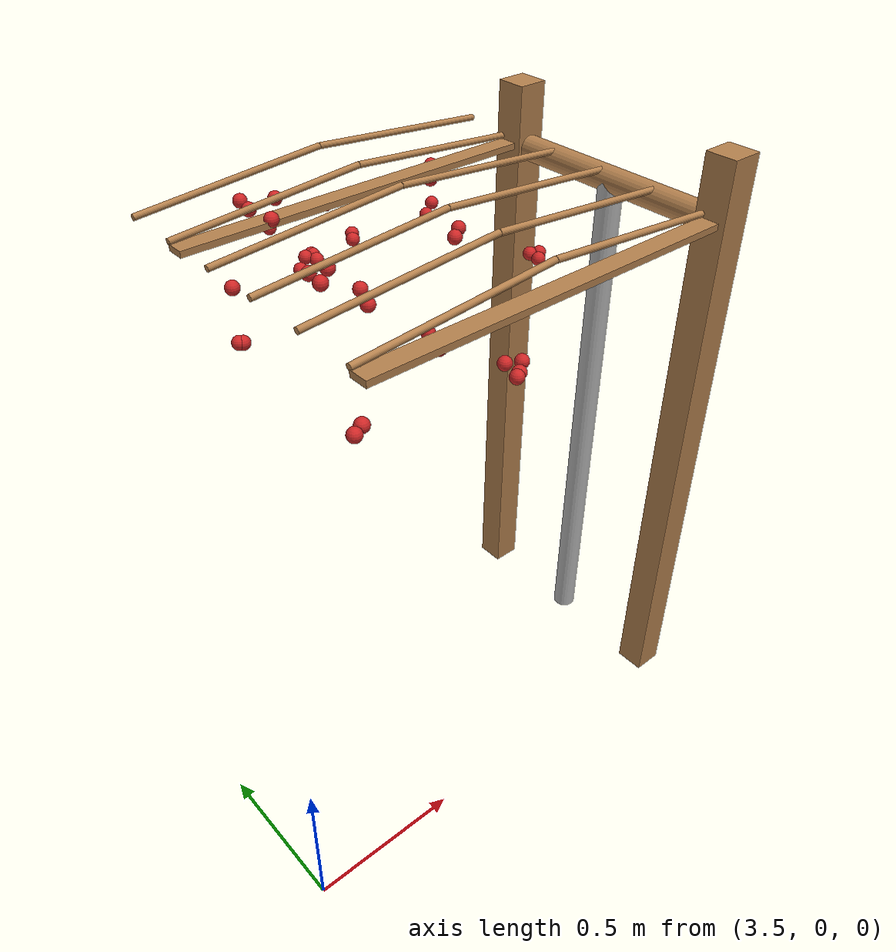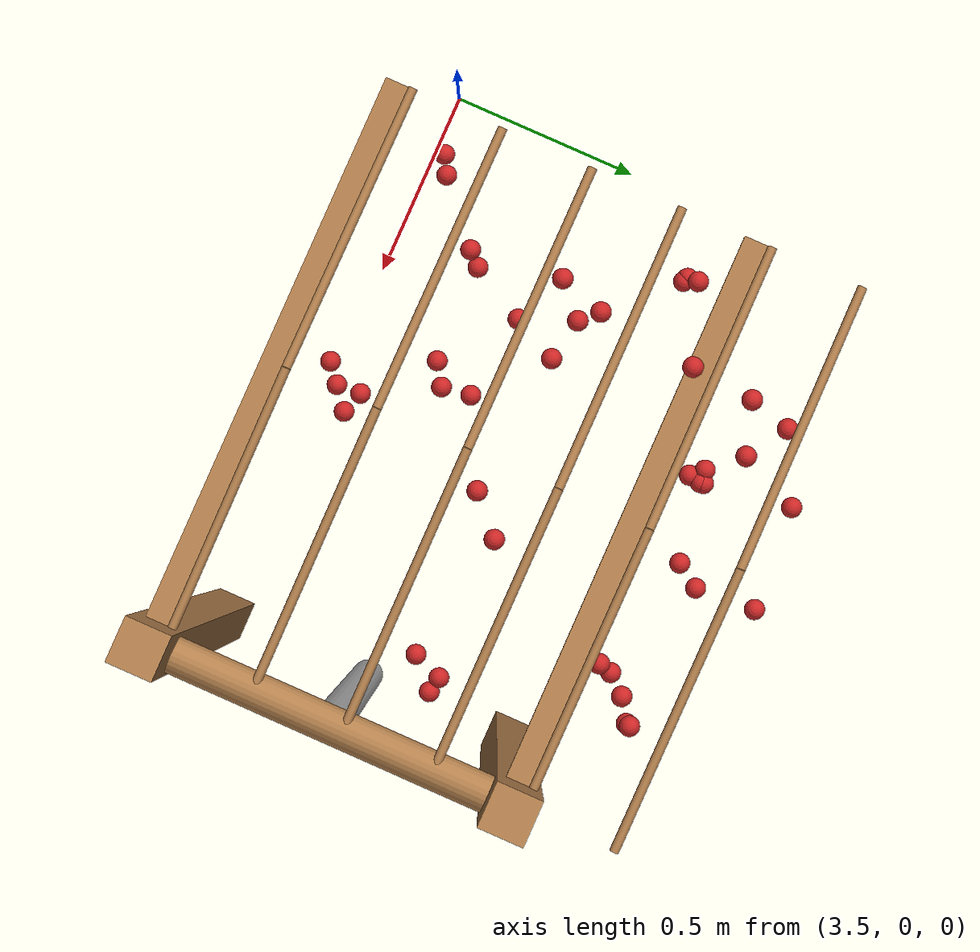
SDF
<sdf version="1.4">
 <model name="pergola">
  <include><name>post_28</name><pose>5.0 0.0 0 0 0 0</pose><uri>model://post</uri></include>
  <include><name>post_29</name><pose>5.0 0.8 0 0 0 0</pose><uri>model://post</uri></include>
  <link name="beam_21">
   <pose>4.375 0.0 1.81 0 0 0</pose>
   <collision name="collision"><geometry><box><size>1.25 0.06 0.02</size></box></geometry></collision>
   <visual name="visual">
    <geometry><box><size>1.25 0.06 0.02</size></box></geometry>
    <material><script><name>Gazebo/Wood</name></script></material>
   </visual>
   <inertial>
    <mass>5</mass>
    <inertia>
     <ixx>0.0016666666666666668</ixx>
     <ixy>0.0</ixy>
     <ixz>0.0</ixz>
     <iyy>0.6525416666666667</iyy>
     <iyz>0.0</iyz>
     <izz>0.6512083333333333</izz>
    </inertia>
   </inertial>
  </link>
  <link name="beam_22">
   <pose>4.375 0.8 1.81 0 0 0</pose>
   <collision name="collision"><geometry><box><size>1.25 0.06 0.02</size></box></geometry></collision>
   <visual name="visual">
    <geometry><box><size>1.25 0.06 0.02</size></box></geometry>
    <material><script><name>Gazebo/Wood</name></script></material>
   </visual>
   <inertial>
    <mass>5</mass>
    <inertia>
     <ixx>0.0016666666666666668</ixx>
     <ixy>0.0</ixy>
     <ixz>0.0</ixz>
     <iyy>0.6525416666666667</iyy>
     <iyz>0.0</iyz>
     <izz>0.6512083333333333</izz>
    </inertia>
   </inertial>
  </link>
  <include><name>tree_24</name><pose>5.0 0.4 0 0 0 0</pose><uri>model://tree_trunk</uri></include>
  <link name="baseBranch_24">
   <pose>5.0 0.4 1.8 1.5707963267948966 0 0</pose>
   <collision name="collision">
    <geometry><cylinder><radius>0.04</radius><length>0.74</length></cylinder></geometry>
   </collision>
   <visual name="visual">
    <geometry><cylinder><radius>0.04</radius><length>0.74</length></cylinder></geometry>
    <material><script><name>Gazebo/WoodFloor</name></script></material>
   </visual>
   <inertial>
    <mass>10</mass>
    <inertia>
     <ixx>0.4603333333333333</ixx>
     <ixy>0.0</ixy>
     <ixz>0.0</ixz>
     <iyy>0.4603333333333333</iyy>
     <iyz>0.0</iyz>
     <izz>0.008</izz>
    </inertia>
   </inertial>
  </link>
  <link name="vine_144">
   <pose>4.0625 0.03 1.85 0 1.4909663410826592 0</pose>
   <collision name="collision">
    <geometry><cylinder><radius>0.01</radius><length>0.6269968101992226</length></cylinder></geometry>
   </collision>
   <visual name="visual">
    <geometry><cylinder><radius>0.01</radius><length>0.6269968101992226</length></cylinder></geometry>
    <material><script><name>Gazebo/WoodFloor</name></script></material>
   </visual>
   <inertial>
    <mass>5</mass>
    <inertia>
     <ixx>0.1639270833333333</ixx>
     <ixy>0.0</ixy>
     <ixz>0.0</ixz>
     <iyy>0.1639270833333333</iyy>
     <iyz>0.0</iyz>
     <izz>0.00025</izz>
    </inertia>
   </inertial>
  </link>
  <link name="vine_145">
   <pose>4.6875 0.03 1.85 0 -1.4909663410826592 0</pose>
   <collision name="collision">
    <geometry><cylinder><radius>0.01</radius><length>0.6269968101992226</length></cylinder></geometry>
   </collision>
   <visual name="visual">
    <geometry><cylinder><radius>0.01</radius><length>0.6269968101992226</length></cylinder></geometry>
    <material><script><name>Gazebo/WoodFloor</name></script></material>
   </visual>
   <inertial>
    <mass>5</mass>
    <inertia>
     <ixx>0.1639270833333333</ixx>
     <ixy>0.0</ixy>
     <ixz>0.0</ixz>
     <iyy>0.1639270833333333</iyy>
     <iyz>0.0</iyz>
     <izz>0.00025</izz>
    </inertia>
   </inertial>
  </link>
  <link name="vine_146">
   <pose>4.0625 0.23 1.85 0 1.4909663410826592 0</pose>
   <collision name="collision">
    <geometry><cylinder><radius>0.01</radius><length>0.6269968101992226</length></cylinder></geometry>
   </collision>
   <visual name="visual">
    <geometry><cylinder><radius>0.01</radius><length>0.6269968101992226</length></cylinder></geometry>
    <material><script><name>Gazebo/WoodFloor</name></script></material>
   </visual>
   <inertial>
    <mass>5</mass>
    <inertia>
     <ixx>0.1639270833333333</ixx>
     <ixy>0.0</ixy>
     <ixz>0.0</ixz>
     <iyy>0.1639270833333333</iyy>
     <iyz>0.0</iyz>
     <izz>0.00025</izz>
    </inertia>
   </inertial>
  </link>
  <link name="vine_147">
   <pose>4.6875 0.23 1.85 0 -1.4909663410826592 0</pose>
   <collision name="collision">
    <geometry><cylinder><radius>0.01</radius><length>0.6269968101992226</length></cylinder></geometry>
   </collision>
   <visual name="visual">
    <geometry><cylinder><radius>0.01</radius><length>0.6269968101992226</length></cylinder></geometry>
    <material><script><name>Gazebo/WoodFloor</name></script></material>
   </visual>
   <inertial>
    <mass>5</mass>
    <inertia>
     <ixx>0.1639270833333333</ixx>
     <ixy>0.0</ixy>
     <ixz>0.0</ixz>
     <iyy>0.1639270833333333</iyy>
     <iyz>0.0</iyz>
     <izz>0.00025</izz>
    </inertia>
   </inertial>
  </link>
  <link name="vine_148">
   <pose>4.0625 0.43000000000000005 1.85 0 1.4909663410826592 0</pose>
   <collision name="collision">
    <geometry><cylinder><radius>0.01</radius><length>0.6269968101992226</length></cylinder></geometry>
   </collision>
   <visual name="visual">
    <geometry><cylinder><radius>0.01</radius><length>0.6269968101992226</length></cylinder></geometry>
    <material><script><name>Gazebo/WoodFloor</name></script></material>
   </visual>
   <inertial>
    <mass>5</mass>
    <inertia>
     <ixx>0.1639270833333333</ixx>
     <ixy>0.0</ixy>
     <ixz>0.0</ixz>
     <iyy>0.1639270833333333</iyy>
     <iyz>0.0</iyz>
     <izz>0.00025</izz>
    </inertia>
   </inertial>
  </link>
  <link name="vine_149">
   <pose>4.6875 0.43000000000000005 1.85 0 -1.4909663410826592 0</pose>
   <collision name="collision">
    <geometry><cylinder><radius>0.01</radius><length>0.6269968101992226</length></cylinder></geometry>
   </collision>
   <visual name="visual">
    <geometry><cylinder><radius>0.01</radius><length>0.6269968101992226</length></cylinder></geometry>
    <material><script><name>Gazebo/WoodFloor</name></script></material>
   </visual>
   <inertial>
    <mass>5</mass>
    <inertia>
     <ixx>0.1639270833333333</ixx>
     <ixy>0.0</ixy>
     <ixz>0.0</ixz>
     <iyy>0.1639270833333333</iyy>
     <iyz>0.0</iyz>
     <izz>0.00025</izz>
    </inertia>
   </inertial>
  </link>
  <link name="vine_150">
   <pose>4.0625 0.6300000000000001 1.85 0 1.4909663410826592 0</pose>
   <collision name="collision">
    <geometry><cylinder><radius>0.01</radius><length>0.6269968101992226</length></cylinder></geometry>
   </collision>
   <visual name="visual">
    <geometry><cylinder><radius>0.01</radius><length>0.6269968101992226</length></cylinder></geometry>
    <material><script><name>Gazebo/WoodFloor</name></script></material>
   </visual>
   <inertial>
    <mass>5</mass>
    <inertia>
     <ixx>0.1639270833333333</ixx>
     <ixy>0.0</ixy>
     <ixz>0.0</ixz>
     <iyy>0.1639270833333333</iyy>
     <iyz>0.0</iyz>
     <izz>0.00025</izz>
    </inertia>
   </inertial>
  </link>
  <link name="vine_151">
   <pose>4.6875 0.6300000000000001 1.85 0 -1.4909663410826592 0</pose>
   <collision name="collision">
    <geometry><cylinder><radius>0.01</radius><length>0.6269968101992226</length></cylinder></geometry>
   </collision>
   <visual name="visual">
    <geometry><cylinder><radius>0.01</radius><length>0.6269968101992226</length></cylinder></geometry>
    <material><script><name>Gazebo/WoodFloor</name></script></material>
   </visual>
   <inertial>
    <mass>5</mass>
    <inertia>
     <ixx>0.1639270833333333</ixx>
     <ixy>0.0</ixy>
     <ixz>0.0</ixz>
     <iyy>0.1639270833333333</iyy>
     <iyz>0.0</iyz>
     <izz>0.00025</izz>
    </inertia>
   </inertial>
  </link>
  <link name="vine_152">
   <pose>4.0625 0.8300000000000001 1.85 0 1.4909663410826592 0</pose>
   <collision name="collision">
    <geometry><cylinder><radius>0.01</radius><length>0.6269968101992226</length></cylinder></geometry>
   </collision>
   <visual name="visual">
    <geometry><cylinder><radius>0.01</radius><length>0.6269968101992226</length></cylinder></geometry>
    <material><script><name>Gazebo/WoodFloor</name></script></material>
   </visual>
   <inertial>
    <mass>5</mass>
    <inertia>
     <ixx>0.1639270833333333</ixx>
     <ixy>0.0</ixy>
     <ixz>0.0</ixz>
     <iyy>0.1639270833333333</iyy>
     <iyz>0.0</iyz>
     <izz>0.00025</izz>
    </inertia>
   </inertial>
  </link>
  <link name="vine_153">
   <pose>4.6875 0.8300000000000001 1.85 0 -1.4909663410826592 0</pose>
   <collision name="collision">
    <geometry><cylinder><radius>0.01</radius><length>0.6269968101992226</length></cylinder></geometry>
   </collision>
   <visual name="visual">
    <geometry><cylinder><radius>0.01</radius><length>0.6269968101992226</length></cylinder></geometry>
    <material><script><name>Gazebo/WoodFloor</name></script></material>
   </visual>
   <inertial>
    <mass>5</mass>
    <inertia>
     <ixx>0.1639270833333333</ixx>
     <ixy>0.0</ixy>
     <ixz>0.0</ixz>
     <iyy>0.1639270833333333</iyy>
     <iyz>0.0</iyz>
     <izz>0.00025</izz>
    </inertia>
   </inertial>
  </link>
  <link name="vine_154">
   <pose>4.0625 1.03 1.85 0 1.4909663410826592 0</pose>
   <collision name="collision">
    <geometry><cylinder><radius>0.01</radius><length>0.6269968101992226</length></cylinder></geometry>
   </collision>
   <visual name="visual">
    <geometry><cylinder><radius>0.01</radius><length>0.6269968101992226</length></cylinder></geometry>
    <material><script><name>Gazebo/WoodFloor</name></script></material>
   </visual>
   <inertial>
    <mass>5</mass>
    <inertia>
     <ixx>0.1639270833333333</ixx>
     <ixy>0.0</ixy>
     <ixz>0.0</ixz>
     <iyy>0.1639270833333333</iyy>
     <iyz>0.0</iyz>
     <izz>0.00025</izz>
    </inertia>
   </inertial>
  </link>
  <link name="vine_155">
   <pose>4.6875 1.03 1.85 0 -1.4909663410826592 0</pose>
   <collision name="collision">
    <geometry><cylinder><radius>0.01</radius><length>0.6269968101992226</length></cylinder></geometry>
   </collision>
   <visual name="visual">
    <geometry><cylinder><radius>0.01</radius><length>0.6269968101992226</length></cylinder></geometry>
    <material><script><name>Gazebo/WoodFloor</name></script></material>
   </visual>
   <inertial>
    <mass>5</mass>
    <inertia>
     <ixx>0.1639270833333333</ixx>
     <ixy>0.0</ixy>
     <ixz>0.0</ixz>
     <iyy>0.1639270833333333</iyy>
     <iyz>0.0</iyz>
     <izz>0.00025</izz>
    </inertia>
   </inertial>
  </link>
  <link name="fruit_18">
   <pose>4.667189210639569 0.8538998489556379 1.748661454350269 0 0 0</pose>
   <collision name="fruit_collision_18"><geometry><sphere><radius>0.022</radius></sphere></geometry></collision>
   <visual name="visual">
    <geometry><sphere><radius>0.022</radius></sphere></geometry>
    <material><script><name>Gazebo/Red</name></script></material>
   </visual>
   <inertial>
    <mass>0.05</mass>
    <inertia>
     <ixx>9.679999999999999e-06</ixx>
     <ixy>0.0</ixy>
     <ixz>0.0</ixz>
     <iyy>9.679999999999999e-06</iyy>
     <iyz>0.0</iyz>
     <izz>9.679999999999999e-06</izz>
    </inertia>
   </inertial>
   <sensor name="fruit_contact_18" type="contact">
    <plugin name="contact_plugin_18" filename="libcontact_plugin.so"/>
    <contact><collision>fruit_collision_18</collision><topic>fruit_contact_topic_18</topic></contact>
   </sensor>
  </link>
  <link name="fruit_42">
   <pose>4.226459715677886 0.2905293908676281 1.563544557676115 0 0 0</pose>
   <collision name="fruit_collision_42"><geometry><sphere><radius>0.022</radius></sphere></geometry></collision>
   <visual name="visual">
    <geometry><sphere><radius>0.022</radius></sphere></geometry>
    <material><script><name>Gazebo/Red</name></script></material>
   </visual>
   <inertial>
    <mass>0.05</mass>
    <inertia>
     <ixx>9.679999999999999e-06</ixx>
     <ixy>0.0</ixy>
     <ixz>0.0</ixz>
     <iyy>9.679999999999999e-06</iyy>
     <iyz>0.0</iyz>
     <izz>9.679999999999999e-06</izz>
    </inertia>
   </inertial>
   <sensor name="fruit_contact_42" type="contact">
    <plugin name="contact_plugin_42" filename="libcontact_plugin.so"/>
    <contact><collision>fruit_collision_42</collision><topic>fruit_contact_topic_42</topic></contact>
   </sensor>
  </link>
  <link name="fruit_76">
   <pose>4.140757992870823 0.8220945579926987 1.619900106047646 0 0 0</pose>
   <collision name="fruit_collision_76"><geometry><sphere><radius>0.022</radius></sphere></geometry></collision>
   <visual name="visual">
    <geometry><sphere><radius>0.022</radius></sphere></geometry>
    <material><script><name>Gazebo/Red</name></script></material>
   </visual>
   <inertial>
    <mass>0.05</mass>
    <inertia>
     <ixx>9.679999999999999e-06</ixx>
     <ixy>0.0</ixy>
     <ixz>0.0</ixz>
     <iyy>9.679999999999999e-06</iyy>
     <iyz>0.0</iyz>
     <izz>9.679999999999999e-06</izz>
    </inertia>
   </inertial>
   <sensor name="fruit_contact_76" type="contact">
    <plugin name="contact_plugin_76" filename="libcontact_plugin.so"/>
    <contact><collision>fruit_collision_76</collision><topic>fruit_contact_topic_76</topic></contact>
   </sensor>
  </link>
  <link name="fruit_80">
   <pose>4.444956800743004 0.48115998849434344 1.7523385409979857 0 0 0</pose>
   <collision name="fruit_collision_80"><geometry><sphere><radius>0.022</radius></sphere></geometry></collision>
   <visual name="visual">
    <geometry><sphere><radius>0.022</radius></sphere></geometry>
    <material><script><name>Gazebo/Red</name></script></material>
   </visual>
   <inertial>
    <mass>0.05</mass>
    <inertia>
     <ixx>9.679999999999999e-06</ixx>
     <ixy>0.0</ixy>
     <ixz>0.0</ixz>
     <iyy>9.679999999999999e-06</iyy>
     <iyz>0.0</iyz>
     <izz>9.679999999999999e-06</izz>
    </inertia>
   </inertial>
   <sensor name="fruit_contact_80" type="contact">
    <plugin name="contact_plugin_80" filename="libcontact_plugin.so"/>
    <contact><collision>fruit_collision_80</collision><topic>fruit_contact_topic_80</topic></contact>
   </sensor>
  </link>
  <link name="fruit_123">
   <pose>4.048595186243792 0.9191204382139264 1.801015191693801 0 0 0</pose>
   <collision name="fruit_collision_123"><geometry><sphere><radius>0.022</radius></sphere></geometry></collision>
   <visual name="visual">
    <geometry><sphere><radius>0.022</radius></sphere></geometry>
    <material><script><name>Gazebo/Red</name></script></material>
   </visual>
   <inertial>
    <mass>0.05</mass>
    <inertia>
     <ixx>9.679999999999999e-06</ixx>
     <ixy>0.0</ixy>
     <ixz>0.0</ixz>
     <iyy>9.679999999999999e-06</iyy>
     <iyz>0.0</iyz>
     <izz>9.679999999999999e-06</izz>
    </inertia>
   </inertial>
   <sensor name="fruit_contact_123" type="contact">
    <plugin name="contact_plugin_123" filename="libcontact_plugin.so"/>
    <contact><collision>fruit_collision_123</collision><topic>fruit_contact_topic_123</topic></contact>
   </sensor>
  </link>
  <link name="fruit_127">
   <pose>3.9763432703957355 0.4653865501017034 1.77402594114814 0 0 0</pose>
   <collision name="fruit_collision_127"><geometry><sphere><radius>0.022</radius></sphere></geometry></collision>
   <visual name="visual">
    <geometry><sphere><radius>0.022</radius></sphere></geometry>
    <material><script><name>Gazebo/Red</name></script></material>
   </visual>
   <inertial>
    <mass>0.05</mass>
    <inertia>
     <ixx>9.679999999999999e-06</ixx>
     <ixy>0.0</ixy>
     <ixz>0.0</ixz>
     <iyy>9.679999999999999e-06</iyy>
     <iyz>0.0</iyz>
     <izz>9.679999999999999e-06</izz>
    </inertia>
   </inertial>
   <sensor name="fruit_contact_127" type="contact">
    <plugin name="contact_plugin_127" filename="libcontact_plugin.so"/>
    <contact><collision>fruit_collision_127</collision><topic>fruit_contact_topic_127</topic></contact>
   </sensor>
  </link>
  <link name="fruit_151">
   <pose>4.812618315981477 0.5014917228800112 1.5619583952954132 0 0 0</pose>
   <collision name="fruit_collision_151"><geometry><sphere><radius>0.022</radius></sphere></geometry></collision>
   <visual name="visual">
    <geometry><sphere><radius>0.022</radius></sphere></geometry>
    <material><script><name>Gazebo/Red</name></script></material>
   </visual>
   <inertial>
    <mass>0.05</mass>
    <inertia>
     <ixx>9.679999999999999e-06</ixx>
     <ixy>0.0</ixy>
     <ixz>0.0</ixz>
     <iyy>9.679999999999999e-06</iyy>
     <iyz>0.0</iyz>
     <izz>9.679999999999999e-06</izz>
    </inertia>
   </inertial>
   <sensor name="fruit_contact_151" type="contact">
    <plugin name="contact_plugin_151" filename="libcontact_plugin.so"/>
    <contact><collision>fruit_collision_151</collision><topic>fruit_contact_topic_151</topic></contact>
   </sensor>
  </link>
  <link name="fruit_169">
   <pose>4.209630517839888 1.0961470930236088 1.6355973905837942 0 0 0</pose>
   <collision name="fruit_collision_169"><geometry><sphere><radius>0.022</radius></sphere></geometry></collision>
   <visual name="visual">
    <geometry><sphere><radius>0.022</radius></sphere></geometry>
    <material><script><name>Gazebo/Red</name></script></material>
   </visual>
   <inertial>
    <mass>0.05</mass>
    <inertia>
     <ixx>9.679999999999999e-06</ixx>
     <ixy>0.0</ixy>
     <ixz>0.0</ixz>
     <iyy>9.679999999999999e-06</iyy>
     <iyz>0.0</iyz>
     <izz>9.679999999999999e-06</izz>
    </inertia>
   </inertial>
   <sensor name="fruit_contact_169" type="contact">
    <plugin name="contact_plugin_169" filename="libcontact_plugin.so"/>
    <contact><collision>fruit_collision_169</collision><topic>fruit_contact_topic_169</topic></contact>
   </sensor>
  </link>
  <link name="fruit_184">
   <pose>4.318353800391757 0.0821271835626442 1.5368305348818636 0 0 0</pose>
   <collision name="fruit_collision_184"><geometry><sphere><radius>0.022</radius></sphere></geometry></collision>
   <visual name="visual">
    <geometry><sphere><radius>0.022</radius></sphere></geometry>
    <material><script><name>Gazebo/Red</name></script></material>
   </visual>
   <inertial>
    <mass>0.05</mass>
    <inertia>
     <ixx>9.679999999999999e-06</ixx>
     <ixy>0.0</ixy>
     <ixz>0.0</ixz>
     <iyy>9.679999999999999e-06</iyy>
     <iyz>0.0</iyz>
     <izz>9.679999999999999e-06</izz>
    </inertia>
   </inertial>
   <sensor name="fruit_contact_184" type="contact">
    <plugin name="contact_plugin_184" filename="libcontact_plugin.so"/>
    <contact><collision>fruit_collision_184</collision><topic>fruit_contact_topic_184</topic></contact>
   </sensor>
  </link>
  <link name="fruit_187">
   <pose>3.98500730453018 0.26108455173850564 1.6013202643405904 0 0 0</pose>
   <collision name="fruit_collision_187"><geometry><sphere><radius>0.022</radius></sphere></geometry></collision>
   <visual name="visual">
    <geometry><sphere><radius>0.022</radius></sphere></geometry>
    <material><script><name>Gazebo/Red</name></script></material>
   </visual>
   <inertial>
    <mass>0.05</mass>
    <inertia>
     <ixx>9.679999999999999e-06</ixx>
     <ixy>0.0</ixy>
     <ixz>0.0</ixz>
     <iyy>9.679999999999999e-06</iyy>
     <iyz>0.0</iyz>
     <izz>9.679999999999999e-06</izz>
    </inertia>
   </inertial>
   <sensor name="fruit_contact_187" type="contact">
    <plugin name="contact_plugin_187" filename="libcontact_plugin.so"/>
    <contact><collision>fruit_collision_187</collision><topic>fruit_contact_topic_187</topic></contact>
   </sensor>
  </link>
  <link name="fruit_199">
   <pose>4.436161909248295 1.1099065740961842 1.6460461167189273 0 0 0</pose>
   <collision name="fruit_collision_199"><geometry><sphere><radius>0.022</radius></sphere></geometry></collision>
   <visual name="visual">
    <geometry><sphere><radius>0.022</radius></sphere></geometry>
    <material><script><name>Gazebo/Red</name></script></material>
   </visual>
   <inertial>
    <mass>0.05</mass>
    <inertia>
     <ixx>9.679999999999999e-06</ixx>
     <ixy>0.0</ixy>
     <ixz>0.0</ixz>
     <iyy>9.679999999999999e-06</iyy>
     <iyz>0.0</iyz>
     <izz>9.679999999999999e-06</izz>
    </inertia>
   </inertial>
   <sensor name="fruit_contact_199" type="contact">
    <plugin name="contact_plugin_199" filename="libcontact_plugin.so"/>
    <contact><collision>fruit_collision_199</collision><topic>fruit_contact_topic_199</topic></contact>
   </sensor>
  </link>
  <link name="fruit_284">
   <pose>4.410345343656173 0.9317547678642205 1.595464745860772 0 0 0</pose>
   <collision name="fruit_collision_284"><geometry><sphere><radius>0.022</radius></sphere></geometry></collision>
   <visual name="visual">
    <geometry><sphere><radius>0.022</radius></sphere></geometry>
    <material><script><name>Gazebo/Red</name></script></material>
   </visual>
   <inertial>
    <mass>0.05</mass>
    <inertia>
     <ixx>9.679999999999999e-06</ixx>
     <ixy>0.0</ixy>
     <ixz>0.0</ixz>
     <iyy>9.679999999999999e-06</iyy>
     <iyz>0.0</iyz>
     <izz>9.679999999999999e-06</izz>
    </inertia>
   </inertial>
   <sensor name="fruit_contact_284" type="contact">
    <plugin name="contact_plugin_284" filename="libcontact_plugin.so"/>
    <contact><collision>fruit_collision_284</collision><topic>fruit_contact_topic_284</topic></contact>
   </sensor>
  </link>
  <link name="fruit_305">
   <pose>4.037568491229922 0.7807577567470301 1.8211263430610214 0 0 0</pose>
   <collision name="fruit_collision_305"><geometry><sphere><radius>0.022</radius></sphere></geometry></collision>
   <visual name="visual">
    <geometry><sphere><radius>0.022</radius></sphere></geometry>
    <material><script><name>Gazebo/Red</name></script></material>
   </visual>
   <inertial>
    <mass>0.05</mass>
    <inertia>
     <ixx>9.679999999999999e-06</ixx>
     <ixy>0.0</ixy>
     <ixz>0.0</ixz>
     <iyy>9.679999999999999e-06</iyy>
     <iyz>0.0</iyz>
     <izz>9.679999999999999e-06</izz>
    </inertia>
   </inertial>
   <sensor name="fruit_contact_305" type="contact">
    <plugin name="contact_plugin_305" filename="libcontact_plugin.so"/>
    <contact><collision>fruit_collision_305</collision><topic>fruit_contact_topic_305</topic></contact>
   </sensor>
  </link>
  <link name="fruit_318">
   <pose>4.084359986095676 0.41399726368634676 1.6954278982475255 0 0 0</pose>
   <collision name="fruit_collision_318"><geometry><sphere><radius>0.022</radius></sphere></geometry></collision>
   <visual name="visual">
    <geometry><sphere><radius>0.022</radius></sphere></geometry>
    <material><script><name>Gazebo/Red</name></script></material>
   </visual>
   <inertial>
    <mass>0.05</mass>
    <inertia>
     <ixx>9.679999999999999e-06</ixx>
     <ixy>0.0</ixy>
     <ixz>0.0</ixz>
     <iyy>9.679999999999999e-06</iyy>
     <iyz>0.0</iyz>
     <izz>9.679999999999999e-06</izz>
    </inertia>
   </inertial>
   <sensor name="fruit_contact_318" type="contact">
    <plugin name="contact_plugin_318" filename="libcontact_plugin.so"/>
    <contact><collision>fruit_collision_318</collision><topic>fruit_contact_topic_318</topic></contact>
   </sensor>
  </link>
  <link name="fruit_325">
   <pose>4.678873894854878 0.8901862957821712 1.617038282481688 0 0 0</pose>
   <collision name="fruit_collision_325"><geometry><sphere><radius>0.022</radius></sphere></geometry></collision>
   <visual name="visual">
    <geometry><sphere><radius>0.022</radius></sphere></geometry>
    <material><script><name>Gazebo/Red</name></script></material>
   </visual>
   <inertial>
    <mass>0.05</mass>
    <inertia>
     <ixx>9.679999999999999e-06</ixx>
     <ixy>0.0</ixy>
     <ixz>0.0</ixz>
     <iyy>9.679999999999999e-06</iyy>
     <iyz>0.0</iyz>
     <izz>9.679999999999999e-06</izz>
    </inertia>
   </inertial>
   <sensor name="fruit_contact_325" type="contact">
    <plugin name="contact_plugin_325" filename="libcontact_plugin.so"/>
    <contact><collision>fruit_collision_325</collision><topic>fruit_contact_topic_325</topic></contact>
   </sensor>
  </link>
  <link name="fruit_352">
   <pose>4.158376353535429 0.9546186403354956 1.7932355231193913 0 0 0</pose>
   <collision name="fruit_collision_352"><geometry><sphere><radius>0.022</radius></sphere></geometry></collision>
   <visual name="visual">
    <geometry><sphere><radius>0.022</radius></sphere></geometry>
    <material><script><name>Gazebo/Red</name></script></material>
   </visual>
   <inertial>
    <mass>0.05</mass>
    <inertia>
     <ixx>9.679999999999999e-06</ixx>
     <ixy>0.0</ixy>
     <ixz>0.0</ixz>
     <iyy>9.679999999999999e-06</iyy>
     <iyz>0.0</iyz>
     <izz>9.679999999999999e-06</izz>
    </inertia>
   </inertial>
   <sensor name="fruit_contact_352" type="contact">
    <plugin name="contact_plugin_352" filename="libcontact_plugin.so"/>
    <contact><collision>fruit_collision_352</collision><topic>fruit_contact_topic_352</topic></contact>
   </sensor>
  </link>
  <link name="fruit_361">
   <pose>4.522154972964918 0.5536751806865672 1.7319585001642992 0 0 0</pose>
   <collision name="fruit_collision_361"><geometry><sphere><radius>0.022</radius></sphere></geometry></collision>
   <visual name="visual">
    <geometry><sphere><radius>0.022</radius></sphere></geometry>
    <material><script><name>Gazebo/Red</name></script></material>
   </visual>
   <inertial>
    <mass>0.05</mass>
    <inertia>
     <ixx>9.679999999999999e-06</ixx>
     <ixy>0.0</ixy>
     <ixz>0.0</ixz>
     <iyy>9.679999999999999e-06</iyy>
     <iyz>0.0</iyz>
     <izz>9.679999999999999e-06</izz>
    </inertia>
   </inertial>
   <sensor name="fruit_contact_361" type="contact">
    <plugin name="contact_plugin_361" filename="libcontact_plugin.so"/>
    <contact><collision>fruit_collision_361</collision><topic>fruit_contact_topic_361</topic></contact>
   </sensor>
  </link>
  <link name="fruit_389">
   <pose>3.8478479520382485 0.7056377282746029 1.5381406121292411 0 0 0</pose>
   <collision name="fruit_collision_389"><geometry><sphere><radius>0.022</radius></sphere></geometry></collision>
   <visual name="visual">
    <geometry><sphere><radius>0.022</radius></sphere></geometry>
    <material><script><name>Gazebo/Red</name></script></material>
   </visual>
   <inertial>
    <mass>0.05</mass>
    <inertia>
     <ixx>9.679999999999999e-06</ixx>
     <ixy>0.0</ixy>
     <ixz>0.0</ixz>
     <iyy>9.679999999999999e-06</iyy>
     <iyz>0.0</iyz>
     <izz>9.679999999999999e-06</izz>
    </inertia>
   </inertial>
   <sensor name="fruit_contact_389" type="contact">
    <plugin name="contact_plugin_389" filename="libcontact_plugin.so"/>
    <contact><collision>fruit_collision_389</collision><topic>fruit_contact_topic_389</topic></contact>
   </sensor>
  </link>
  <link name="fruit_393">
   <pose>3.8581290860007447 0.7006697273293531 1.5372596225252864 0 0 0</pose>
   <collision name="fruit_collision_393"><geometry><sphere><radius>0.022</radius></sphere></geometry></collision>
   <visual name="visual">
    <geometry><sphere><radius>0.022</radius></sphere></geometry>
    <material><script><name>Gazebo/Red</name></script></material>
   </visual>
   <inertial>
    <mass>0.05</mass>
    <inertia>
     <ixx>9.679999999999999e-06</ixx>
     <ixy>0.0</ixy>
     <ixz>0.0</ixz>
     <iyy>9.679999999999999e-06</iyy>
     <iyz>0.0</iyz>
     <izz>9.679999999999999e-06</izz>
    </inertia>
   </inertial>
   <sensor name="fruit_contact_393" type="contact">
    <plugin name="contact_plugin_393" filename="libcontact_plugin.so"/>
    <contact><collision>fruit_collision_393</collision><topic>fruit_contact_topic_393</topic></contact>
   </sensor>
  </link>
  <link name="fruit_408">
   <pose>4.273141449024914 0.3208201063542052 1.5504176444943778 0 0 0</pose>
   <collision name="fruit_collision_408"><geometry><sphere><radius>0.022</radius></sphere></geometry></collision>
   <visual name="visual">
    <geometry><sphere><radius>0.022</radius></sphere></geometry>
    <material><script><name>Gazebo/Red</name></script></material>
   </visual>
   <inertial>
    <mass>0.05</mass>
    <inertia>
     <ixx>9.679999999999999e-06</ixx>
     <ixy>0.0</ixy>
     <ixz>0.0</ixz>
     <iyy>9.679999999999999e-06</iyy>
     <iyz>0.0</iyz>
     <izz>9.679999999999999e-06</izz>
    </inertia>
   </inertial>
   <sensor name="fruit_contact_408" type="contact">
    <plugin name="contact_plugin_408" filename="libcontact_plugin.so"/>
    <contact><collision>fruit_collision_408</collision><topic>fruit_contact_topic_408</topic></contact>
   </sensor>
  </link>
  <link name="fruit_409">
   <pose>4.011779462661835 0.2898576086601458 1.5882065211836152 0 0 0</pose>
   <collision name="fruit_collision_409"><geometry><sphere><radius>0.022</radius></sphere></geometry></collision>
   <visual name="visual">
    <geometry><sphere><radius>0.022</radius></sphere></geometry>
    <material><script><name>Gazebo/Red</name></script></material>
   </visual>
   <inertial>
    <mass>0.05</mass>
    <inertia>
     <ixx>9.679999999999999e-06</ixx>
     <ixy>0.0</ixy>
     <ixz>0.0</ixz>
     <iyy>9.679999999999999e-06</iyy>
     <iyz>0.0</iyz>
     <izz>9.679999999999999e-06</izz>
    </inertia>
   </inertial>
   <sensor name="fruit_contact_409" type="contact">
    <plugin name="contact_plugin_409" filename="libcontact_plugin.so"/>
    <contact><collision>fruit_collision_409</collision><topic>fruit_contact_topic_409</topic></contact>
   </sensor>
  </link>
  <link name="fruit_419">
   <pose>4.710462440324327 0.9235278665373452 1.73622696055132 0 0 0</pose>
   <collision name="fruit_collision_419"><geometry><sphere><radius>0.022</radius></sphere></geometry></collision>
   <visual name="visual">
    <geometry><sphere><radius>0.022</radius></sphere></geometry>
    <material><script><name>Gazebo/Red</name></script></material>
   </visual>
   <inertial>
    <mass>0.05</mass>
    <inertia>
     <ixx>9.679999999999999e-06</ixx>
     <ixy>0.0</ixy>
     <ixz>0.0</ixz>
     <iyy>9.679999999999999e-06</iyy>
     <iyz>0.0</iyz>
     <izz>9.679999999999999e-06</izz>
    </inertia>
   </inertial>
   <sensor name="fruit_contact_419" type="contact">
    <plugin name="contact_plugin_419" filename="libcontact_plugin.so"/>
    <contact><collision>fruit_collision_419</collision><topic>fruit_contact_topic_419</topic></contact>
   </sensor>
  </link>
  <link name="fruit_441">
   <pose>3.8184058476733242 0.12656233524108387 1.5593468347817045 0 0 0</pose>
   <collision name="fruit_collision_441"><geometry><sphere><radius>0.022</radius></sphere></geometry></collision>
   <visual name="visual">
    <geometry><sphere><radius>0.022</radius></sphere></geometry>
    <material><script><name>Gazebo/Red</name></script></material>
   </visual>
   <inertial>
    <mass>0.05</mass>
    <inertia>
     <ixx>9.679999999999999e-06</ixx>
     <ixy>0.0</ixy>
     <ixz>0.0</ixz>
     <iyy>9.679999999999999e-06</iyy>
     <iyz>0.0</iyz>
     <izz>9.679999999999999e-06</izz>
    </inertia>
   </inertial>
   <sensor name="fruit_contact_441" type="contact">
    <plugin name="contact_plugin_441" filename="libcontact_plugin.so"/>
    <contact><collision>fruit_collision_441</collision><topic>fruit_contact_topic_441</topic></contact>
   </sensor>
  </link>
  <link name="fruit_442">
   <pose>4.874586642646392 0.5593971766772609 1.5430723205838932 0 0 0</pose>
   <collision name="fruit_collision_442"><geometry><sphere><radius>0.022</radius></sphere></geometry></collision>
   <visual name="visual">
    <geometry><sphere><radius>0.022</radius></sphere></geometry>
    <material><script><name>Gazebo/Red</name></script></material>
   </visual>
   <inertial>
    <mass>0.05</mass>
    <inertia>
     <ixx>9.679999999999999e-06</ixx>
     <ixy>0.0</ixy>
     <ixz>0.0</ixz>
     <iyy>9.679999999999999e-06</iyy>
     <iyz>0.0</iyz>
     <izz>9.679999999999999e-06</izz>
    </inertia>
   </inertial>
   <sensor name="fruit_contact_442" type="contact">
    <plugin name="contact_plugin_442" filename="libcontact_plugin.so"/>
    <contact><collision>fruit_collision_442</collision><topic>fruit_contact_topic_442</topic></contact>
   </sensor>
  </link>
  <link name="fruit_457">
   <pose>4.072874582670981 1.00969270292253 1.7905526375039569 0 0 0</pose>
   <collision name="fruit_collision_457"><geometry><sphere><radius>0.022</radius></sphere></geometry></collision>
   <visual name="visual">
    <geometry><sphere><radius>0.022</radius></sphere></geometry>
    <material><script><name>Gazebo/Red</name></script></material>
   </visual>
   <inertial>
    <mass>0.05</mass>
    <inertia>
     <ixx>9.679999999999999e-06</ixx>
     <ixy>0.0</ixy>
     <ixz>0.0</ixz>
     <iyy>9.679999999999999e-06</iyy>
     <iyz>0.0</iyz>
     <izz>9.679999999999999e-06</izz>
    </inertia>
   </inertial>
   <sensor name="fruit_contact_457" type="contact">
    <plugin name="contact_plugin_457" filename="libcontact_plugin.so"/>
    <contact><collision>fruit_collision_457</collision><topic>fruit_contact_topic_457</topic></contact>
   </sensor>
  </link>
  <link name="fruit_476">
   <pose>4.042701334221307 0.5285814565865811 1.7700675208136598 0 0 0</pose>
   <collision name="fruit_collision_476"><geometry><sphere><radius>0.022</radius></sphere></geometry></collision>
   <visual name="visual">
    <geometry><sphere><radius>0.022</radius></sphere></geometry>
    <material><script><name>Gazebo/Red</name></script></material>
   </visual>
   <inertial>
    <mass>0.05</mass>
    <inertia>
     <ixx>9.679999999999999e-06</ixx>
     <ixy>0.0</ixy>
     <ixz>0.0</ixz>
     <iyy>9.679999999999999e-06</iyy>
     <iyz>0.0</iyz>
     <izz>9.679999999999999e-06</izz>
    </inertia>
   </inertial>
   <sensor name="fruit_contact_476" type="contact">
    <plugin name="contact_plugin_476" filename="libcontact_plugin.so"/>
    <contact><collision>fruit_collision_476</collision><topic>fruit_contact_topic_476</topic></contact>
   </sensor>
  </link>
  <link name="fruit_482">
   <pose>4.005848975021356 0.5647978098159254 1.7529779699386954 0 0 0</pose>
   <collision name="fruit_collision_482"><geometry><sphere><radius>0.022</radius></sphere></geometry></collision>
   <visual name="visual">
    <geometry><sphere><radius>0.022</radius></sphere></geometry>
    <material><script><name>Gazebo/Red</name></script></material>
   </visual>
   <inertial>
    <mass>0.05</mass>
    <inertia>
     <ixx>9.679999999999999e-06</ixx>
     <ixy>0.0</ixy>
     <ixz>0.0</ixz>
     <iyy>9.679999999999999e-06</iyy>
     <iyz>0.0</iyz>
     <izz>9.679999999999999e-06</izz>
    </inertia>
   </inertial>
   <sensor name="fruit_contact_482" type="contact">
    <plugin name="contact_plugin_482" filename="libcontact_plugin.so"/>
    <contact><collision>fruit_collision_482</collision><topic>fruit_contact_topic_482</topic></contact>
   </sensor>
  </link>
  <link name="fruit_506">
   <pose>3.8614215080800927 0.7246072958161087 1.6955146064728002 0 0 0</pose>
   <collision name="fruit_collision_506"><geometry><sphere><radius>0.022</radius></sphere></geometry></collision>
   <visual name="visual">
    <geometry><sphere><radius>0.022</radius></sphere></geometry>
    <material><script><name>Gazebo/Red</name></script></material>
   </visual>
   <inertial>
    <mass>0.05</mass>
    <inertia>
     <ixx>9.679999999999999e-06</ixx>
     <ixy>0.0</ixy>
     <ixz>0.0</ixz>
     <iyy>9.679999999999999e-06</iyy>
     <iyz>0.0</iyz>
     <izz>9.679999999999999e-06</izz>
    </inertia>
   </inertial>
   <sensor name="fruit_contact_506" type="contact">
    <plugin name="contact_plugin_506" filename="libcontact_plugin.so"/>
    <contact><collision>fruit_collision_506</collision><topic>fruit_contact_topic_506</topic></contact>
   </sensor>
  </link>
  <link name="fruit_520">
   <pose>4.444943860886834 0.9838891651442447 1.587309209970014 0 0 0</pose>
   <collision name="fruit_collision_520"><geometry><sphere><radius>0.022</radius></sphere></geometry></collision>
   <visual name="visual">
    <geometry><sphere><radius>0.022</radius></sphere></geometry>
    <material><script><name>Gazebo/Red</name></script></material>
   </visual>
   <inertial>
    <mass>0.05</mass>
    <inertia>
     <ixx>9.679999999999999e-06</ixx>
     <ixy>0.0</ixy>
     <ixz>0.0</ixz>
     <iyy>9.679999999999999e-06</iyy>
     <iyz>0.0</iyz>
     <izz>9.679999999999999e-06</izz>
    </inertia>
   </inertial>
   <sensor name="fruit_contact_520" type="contact">
    <plugin name="contact_plugin_520" filename="libcontact_plugin.so"/>
    <contact><collision>fruit_collision_520</collision><topic>fruit_contact_topic_520</topic></contact>
   </sensor>
  </link>
  <link name="fruit_535">
   <pose>4.238082004054206 0.9018146683288569 1.6078978171907827 0 0 0</pose>
   <collision name="fruit_collision_535"><geometry><sphere><radius>0.022</radius></sphere></geometry></collision>
   <visual name="visual">
    <geometry><sphere><radius>0.022</radius></sphere></geometry>
    <material><script><name>Gazebo/Red</name></script></material>
   </visual>
   <inertial>
    <mass>0.05</mass>
    <inertia>
     <ixx>9.679999999999999e-06</ixx>
     <ixy>0.0</ixy>
     <ixz>0.0</ixz>
     <iyy>9.679999999999999e-06</iyy>
     <iyz>0.0</iyz>
     <izz>9.679999999999999e-06</izz>
    </inertia>
   </inertial>
   <sensor name="fruit_contact_535" type="contact">
    <plugin name="contact_plugin_535" filename="libcontact_plugin.so"/>
    <contact><collision>fruit_collision_535</collision><topic>fruit_contact_topic_535</topic></contact>
   </sensor>
  </link>
  <link name="fruit_592">
   <pose>4.264117639441689 0.3850281788277066 1.5576126831177997 0 0 0</pose>
   <collision name="fruit_collision_592"><geometry><sphere><radius>0.022</radius></sphere></geometry></collision>
   <visual name="visual">
    <geometry><sphere><radius>0.022</radius></sphere></geometry>
    <material><script><name>Gazebo/Red</name></script></material>
   </visual>
   <inertial>
    <mass>0.05</mass>
    <inertia>
     <ixx>9.679999999999999e-06</ixx>
     <ixy>0.0</ixy>
     <ixz>0.0</ixz>
     <iyy>9.679999999999999e-06</iyy>
     <iyz>0.0</iyz>
     <izz>9.679999999999999e-06</izz>
    </inertia>
   </inertial>
   <sensor name="fruit_contact_592" type="contact">
    <plugin name="contact_plugin_592" filename="libcontact_plugin.so"/>
    <contact><collision>fruit_collision_592</collision><topic>fruit_contact_topic_592</topic></contact>
   </sensor>
  </link>
  <link name="fruit_594">
   <pose>4.2101251518545295 0.9004262517206401 1.609283156855059 0 0 0</pose>
   <collision name="fruit_collision_594"><geometry><sphere><radius>0.022</radius></sphere></geometry></collision>
   <visual name="visual">
    <geometry><sphere><radius>0.022</radius></sphere></geometry>
    <material><script><name>Gazebo/Red</name></script></material>
   </visual>
   <inertial>
    <mass>0.05</mass>
    <inertia>
     <ixx>9.679999999999999e-06</ixx>
     <ixy>0.0</ixy>
     <ixz>0.0</ixz>
     <iyy>9.679999999999999e-06</iyy>
     <iyz>0.0</iyz>
     <izz>9.679999999999999e-06</izz>
    </inertia>
   </inertial>
   <sensor name="fruit_contact_594" type="contact">
    <plugin name="contact_plugin_594" filename="libcontact_plugin.so"/>
    <contact><collision>fruit_collision_594</collision><topic>fruit_contact_topic_594</topic></contact>
   </sensor>
  </link>
  <link name="fruit_641">
   <pose>4.763429401512863 0.9638080504156761 1.609456135982109 0 0 0</pose>
   <collision name="fruit_collision_641"><geometry><sphere><radius>0.022</radius></sphere></geometry></collision>
   <visual name="visual">
    <geometry><sphere><radius>0.022</radius></sphere></geometry>
    <material><script><name>Gazebo/Red</name></script></material>
   </visual>
   <inertial>
    <mass>0.05</mass>
    <inertia>
     <ixx>9.679999999999999e-06</ixx>
     <ixy>0.0</ixy>
     <ixz>0.0</ixz>
     <iyy>9.679999999999999e-06</iyy>
     <iyz>0.0</iyz>
     <izz>9.679999999999999e-06</izz>
    </inertia>
   </inertial>
   <sensor name="fruit_contact_641" type="contact">
    <plugin name="contact_plugin_641" filename="libcontact_plugin.so"/>
    <contact><collision>fruit_collision_641</collision><topic>fruit_contact_topic_641</topic></contact>
   </sensor>
  </link>
  <link name="fruit_650">
   <pose>4.40424442065365 0.1506970906203438 1.5178565607681838 0 0 0</pose>
   <collision name="fruit_collision_650"><geometry><sphere><radius>0.022</radius></sphere></geometry></collision>
   <visual name="visual">
    <geometry><sphere><radius>0.022</radius></sphere></geometry>
    <material><script><name>Gazebo/Red</name></script></material>
   </visual>
   <inertial>
    <mass>0.05</mass>
    <inertia>
     <ixx>9.679999999999999e-06</ixx>
     <ixy>0.0</ixy>
     <ixz>0.0</ixz>
     <iyy>9.679999999999999e-06</iyy>
     <iyz>0.0</iyz>
     <izz>9.679999999999999e-06</izz>
    </inertia>
   </inertial>
   <sensor name="fruit_contact_650" type="contact">
    <plugin name="contact_plugin_650" filename="libcontact_plugin.so"/>
    <contact><collision>fruit_collision_650</collision><topic>fruit_contact_topic_650</topic></contact>
   </sensor>
  </link>
  <link name="fruit_653">
   <pose>4.358115206240416 0.11342121103281419 1.518870482691158 0 0 0</pose>
   <collision name="fruit_collision_653"><geometry><sphere><radius>0.022</radius></sphere></geometry></collision>
   <visual name="visual">
    <geometry><sphere><radius>0.022</radius></sphere></geometry>
    <material><script><name>Gazebo/Red</name></script></material>
   </visual>
   <inertial>
    <mass>0.05</mass>
    <inertia>
     <ixx>9.679999999999999e-06</ixx>
     <ixy>0.0</ixy>
     <ixz>0.0</ixz>
     <iyy>9.679999999999999e-06</iyy>
     <iyz>0.0</iyz>
     <izz>9.679999999999999e-06</izz>
    </inertia>
   </inertial>
   <sensor name="fruit_contact_653" type="contact">
    <plugin name="contact_plugin_653" filename="libcontact_plugin.so"/>
    <contact><collision>fruit_collision_653</collision><topic>fruit_contact_topic_653</topic></contact>
   </sensor>
  </link>
  <link name="fruit_658">
   <pose>4.759617040845474 0.9623438583163496 1.7410539293638094 0 0 0</pose>
   <collision name="fruit_collision_658"><geometry><sphere><radius>0.022</radius></sphere></geometry></collision>
   <visual name="visual">
    <geometry><sphere><radius>0.022</radius></sphere></geometry>
    <material><script><name>Gazebo/Red</name></script></material>
   </visual>
   <inertial>
    <mass>0.05</mass>
    <inertia>
     <ixx>9.679999999999999e-06</ixx>
     <ixy>0.0</ixy>
     <ixz>0.0</ixz>
     <iyy>9.679999999999999e-06</iyy>
     <iyz>0.0</iyz>
     <izz>9.679999999999999e-06</izz>
    </inertia>
   </inertial>
   <sensor name="fruit_contact_658" type="contact">
    <plugin name="contact_plugin_658" filename="libcontact_plugin.so"/>
    <contact><collision>fruit_collision_658</collision><topic>fruit_contact_topic_658</topic></contact>
   </sensor>
  </link>
  <link name="fruit_664">
   <pose>4.838752809205884 0.5659333475179702 1.548143887759783 0 0 0</pose>
   <collision name="fruit_collision_664"><geometry><sphere><radius>0.022</radius></sphere></geometry></collision>
   <visual name="visual">
    <geometry><sphere><radius>0.022</radius></sphere></geometry>
    <material><script><name>Gazebo/Red</name></script></material>
   </visual>
   <inertial>
    <mass>0.05</mass>
    <inertia>
     <ixx>9.679999999999999e-06</ixx>
     <ixy>0.0</ixy>
     <ixz>0.0</ixz>
     <iyy>9.679999999999999e-06</iyy>
     <iyz>0.0</iyz>
     <izz>9.679999999999999e-06</izz>
    </inertia>
   </inertial>
   <sensor name="fruit_contact_664" type="contact">
    <plugin name="contact_plugin_664" filename="libcontact_plugin.so"/>
    <contact><collision>fruit_collision_664</collision><topic>fruit_contact_topic_664</topic></contact>
   </sensor>
  </link>
  <link name="fruit_710">
   <pose>4.237460914713289 0.9088646607205786 1.6078855587017928 0 0 0</pose>
   <collision name="fruit_collision_710"><geometry><sphere><radius>0.022</radius></sphere></geometry></collision>
   <visual name="visual">
    <geometry><sphere><radius>0.022</radius></sphere></geometry>
    <material><script><name>Gazebo/Red</name></script></material>
   </visual>
   <inertial>
    <mass>0.05</mass>
    <inertia>
     <ixx>9.679999999999999e-06</ixx>
     <ixy>0.0</ixy>
     <ixz>0.0</ixz>
     <iyy>9.679999999999999e-06</iyy>
     <iyz>0.0</iyz>
     <izz>9.679999999999999e-06</izz>
    </inertia>
   </inertial>
   <sensor name="fruit_contact_710" type="contact">
    <plugin name="contact_plugin_710" filename="libcontact_plugin.so"/>
    <contact><collision>fruit_collision_710</collision><topic>fruit_contact_topic_710</topic></contact>
   </sensor>
  </link>
  <link name="fruit_714">
   <pose>4.354921246640745 0.1675159230441333 1.5230367183477407 0 0 0</pose>
   <collision name="fruit_collision_714"><geometry><sphere><radius>0.022</radius></sphere></geometry></collision>
   <visual name="visual">
    <geometry><sphere><radius>0.022</radius></sphere></geometry>
    <material><script><name>Gazebo/Red</name></script></material>
   </visual>
   <inertial>
    <mass>0.05</mass>
    <inertia>
     <ixx>9.679999999999999e-06</ixx>
     <ixy>0.0</ixy>
     <ixz>0.0</ixz>
     <iyy>9.679999999999999e-06</iyy>
     <iyz>0.0</iyz>
     <izz>9.679999999999999e-06</izz>
    </inertia>
   </inertial>
   <sensor name="fruit_contact_714" type="contact">
    <plugin name="contact_plugin_714" filename="libcontact_plugin.so"/>
    <contact><collision>fruit_collision_714</collision><topic>fruit_contact_topic_714</topic></contact>
   </sensor>
  </link>
  <link name="fruit_736">
   <pose>4.130983635565788 0.5106714804377759 1.6861312790462808 0 0 0</pose>
   <collision name="fruit_collision_736"><geometry><sphere><radius>0.022</radius></sphere></geometry></collision>
   <visual name="visual">
    <geometry><sphere><radius>0.022</radius></sphere></geometry>
    <material><script><name>Gazebo/Red</name></script></material>
   </visual>
   <inertial>
    <mass>0.05</mass>
    <inertia>
     <ixx>9.679999999999999e-06</ixx>
     <ixy>0.0</ixy>
     <ixz>0.0</ixz>
     <iyy>9.679999999999999e-06</iyy>
     <iyz>0.0</iyz>
     <izz>9.679999999999999e-06</izz>
    </inertia>
   </inertial>
   <sensor name="fruit_contact_736" type="contact">
    <plugin name="contact_plugin_736" filename="libcontact_plugin.so"/>
    <contact><collision>fruit_collision_736</collision><topic>fruit_contact_topic_736</topic></contact>
   </sensor>
  </link>
  <link name="fruit_791">
   <pose>3.8569465488916395 0.148252831785758 1.5583204880014612 0 0 0</pose>
   <collision name="fruit_collision_791"><geometry><sphere><radius>0.022</radius></sphere></geometry></collision>
   <visual name="visual">
    <geometry><sphere><radius>0.022</radius></sphere></geometry>
    <material><script><name>Gazebo/Red</name></script></material>
   </visual>
   <inertial>
    <mass>0.05</mass>
    <inertia>
     <ixx>9.679999999999999e-06</ixx>
     <ixy>0.0</ixy>
     <ixz>0.0</ixz>
     <iyy>9.679999999999999e-06</iyy>
     <iyz>0.0</iyz>
     <izz>9.679999999999999e-06</izz>
    </inertia>
   </inertial>
   <sensor name="fruit_contact_791" type="contact">
    <plugin name="contact_plugin_791" filename="libcontact_plugin.so"/>
    <contact><collision>fruit_collision_791</collision><topic>fruit_contact_topic_791</topic></contact>
   </sensor>
  </link>
  <link name="fruit_799">
   <pose>4.233114737874809 0.8748908509335936 1.6036893423938852 0 0 0</pose>
   <collision name="fruit_collision_799"><geometry><sphere><radius>0.022</radius></sphere></geometry></collision>
   <visual name="visual">
    <geometry><sphere><radius>0.022</radius></sphere></geometry>
    <material><script><name>Gazebo/Red</name></script></material>
   </visual>
   <inertial>
    <mass>0.05</mass>
    <inertia>
     <ixx>9.679999999999999e-06</ixx>
     <ixy>0.0</ixy>
     <ixz>0.0</ixz>
     <iyy>9.679999999999999e-06</iyy>
     <iyz>0.0</iyz>
     <izz>9.679999999999999e-06</izz>
    </inertia>
   </inertial>
   <sensor name="fruit_contact_799" type="contact">
    <plugin name="contact_plugin_799" filename="libcontact_plugin.so"/>
    <contact><collision>fruit_collision_799</collision><topic>fruit_contact_topic_799</topic></contact>
   </sensor>
  </link>
 </model>
</sdf>
